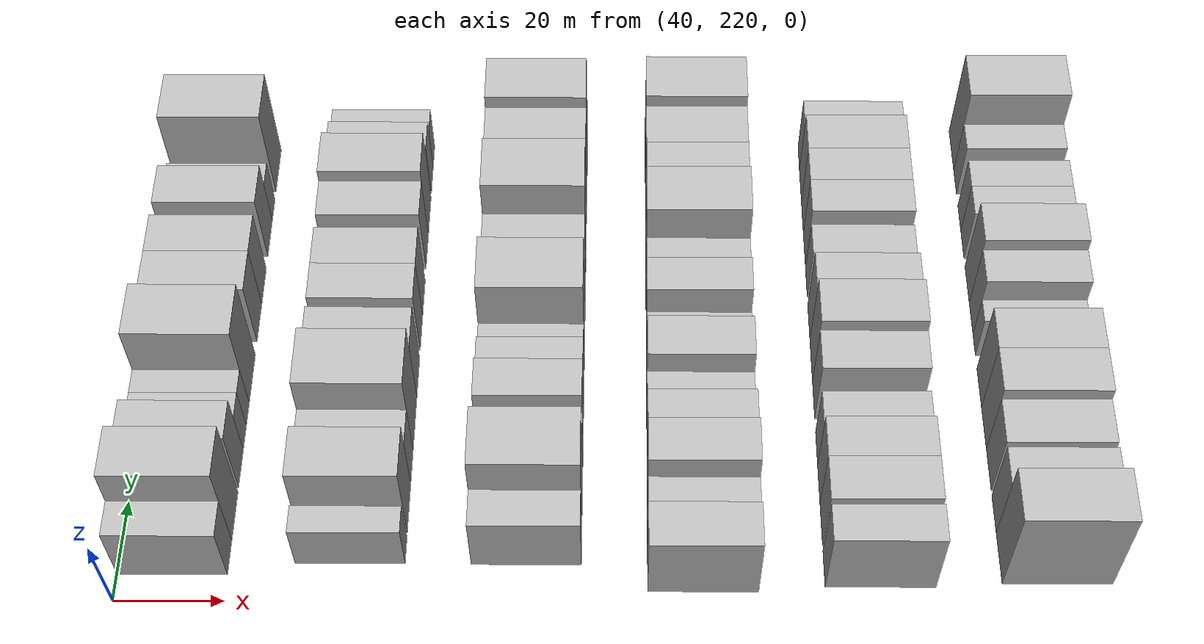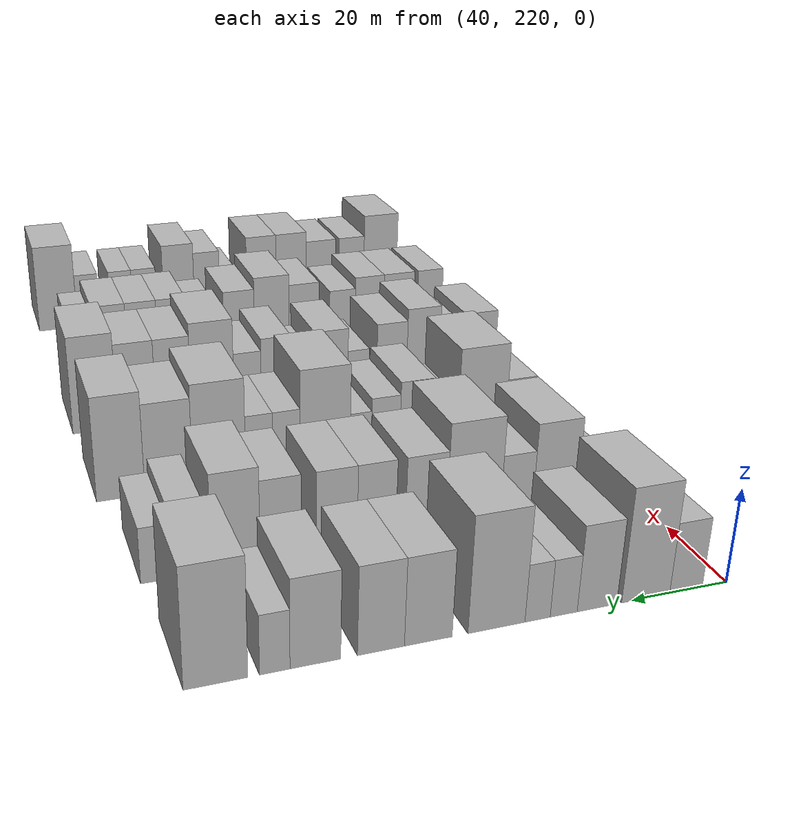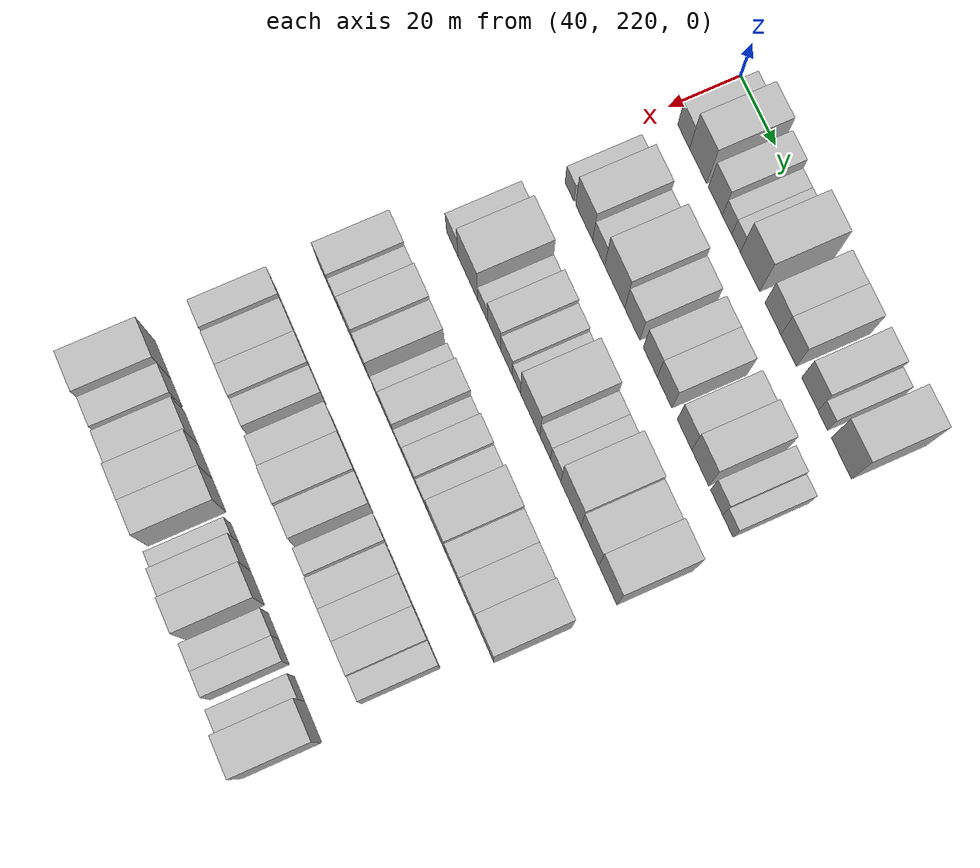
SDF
<sdf version="1.6">
 <world name="default">
  <model name="building_89">
   <static>1</static>
   <pose>50.0000 228.6966 0 0.000000 0.000000 0.000000</pose>
   <link name="link">
    <pose>0 0 7.50 0 0 0</pose>
    <collision name="collision"><geometry><box><size>20.0000 6.9171 15.0000</size></box></geometry></collision>
    <visual name="visual">
     <cast_shadows>0</cast_shadows>
     <geometry><box><size>20.0000 6.9171 15.0000</size></box></geometry>
     <material>
      <script>
       <uri>model://HANNAS_wall/materials/scripts</uri>
       <uri>model://HANNAS_wall/materials/textures</uri>
       <name>vrc/HANNAS_wall</name>
      </script>
     </material>
    </visual>
   </link>
  </model>
  <model name="building_90">
   <static>1</static>
   <pose>50.0000 237.1487 0 0.000000 0.000000 0.000000</pose>
   <link name="link">
    <pose>0 0 12.00 0 0 0</pose>
    <collision name="collision"><geometry><box><size>20.0000 9.9870 24.0000</size></box></geometry></collision>
    <visual name="visual">
     <cast_shadows>0</cast_shadows>
     <geometry><box><size>20.0000 9.9870 24.0000</size></box></geometry>
     <material>
      <script>
       <uri>model://HANNAS_wall/materials/scripts</uri>
       <uri>model://HANNAS_wall/materials/textures</uri>
       <name>vrc/HANNAS_wall</name>
      </script>
     </material>
    </visual>
   </link>
  </model>
  <model name="building_91">
   <static>1</static>
   <pose>50.0000 247.1616 0 0.000000 0.000000 0.000000</pose>
   <link name="link">
    <pose>0 0 9.00 0 0 0</pose>
    <collision name="collision"><geometry><box><size>20.0000 8.0387 18.0000</size></box></geometry></collision>
    <visual name="visual">
     <cast_shadows>0</cast_shadows>
     <geometry><box><size>20.0000 8.0387 18.0000</size></box></geometry>
     <material>
      <script>
       <uri>model://HANNAS_wall/materials/scripts</uri>
       <uri>model://HANNAS_wall/materials/textures</uri>
       <name>vrc/HANNAS_wall</name>
      </script>
     </material>
    </visual>
   </link>
  </model>
  <model name="building_92">
   <static>1</static>
   <pose>50.0000 253.8727 0 0.000000 0.000000 0.000000</pose>
   <link name="link">
    <pose>0 0 6.00 0 0 0</pose>
    <collision name="collision"><geometry><box><size>20.0000 5.3836 12.0000</size></box></geometry></collision>
    <visual name="visual">
     <cast_shadows>0</cast_shadows>
     <geometry><box><size>20.0000 5.3836 12.0000</size></box></geometry>
     <material>
      <script>
       <uri>model://HANNAS_wall/materials/scripts</uri>
       <uri>model://HANNAS_wall/materials/textures</uri>
       <name>vrc/HANNAS_wall</name>
      </script>
     </material>
    </visual>
   </link>
  </model>
  <model name="building_93">
   <static>1</static>
   <pose>50.0000 259.0503 0 0.000000 0.000000 0.000000</pose>
   <link name="link">
    <pose>0 0 6.00 0 0 0</pose>
    <collision name="collision"><geometry><box><size>20.0000 4.9715 12.0000</size></box></geometry></collision>
    <visual name="visual">
     <cast_shadows>0</cast_shadows>
     <geometry><box><size>20.0000 4.9715 12.0000</size></box></geometry>
     <material>
      <script>
       <uri>model://HANNAS_wall/materials/scripts</uri>
       <uri>model://HANNAS_wall/materials/textures</uri>
       <name>vrc/HANNAS_wall</name>
      </script>
     </material>
    </visual>
   </link>
  </model>
  <model name="building_94">
   <static>1</static>
   <pose>50.0000 267.0421 0 0.000000 0.000000 0.000000</pose>
   <link name="link">
    <pose>0 0 12.00 0 0 0</pose>
    <collision name="collision"><geometry><box><size>20.0000 11.0121 24.0000</size></box></geometry></collision>
    <visual name="visual">
     <cast_shadows>0</cast_shadows>
     <geometry><box><size>20.0000 11.0121 24.0000</size></box></geometry>
     <material>
      <script>
       <uri>model://HANNAS_wall/materials/scripts</uri>
       <uri>model://HANNAS_wall/materials/textures</uri>
       <name>vrc/HANNAS_wall</name>
      </script>
     </material>
    </visual>
   </link>
  </model>
  <model name="building_95">
   <static>1</static>
   <pose>50.0000 280.0065 0 0.000000 0.000000 0.000000</pose>
   <link name="link">
    <pose>0 0 9.00 0 0 0</pose>
    <collision name="collision"><geometry><box><size>20.0000 8.9168 18.0000</size></box></geometry></collision>
    <visual name="visual">
     <cast_shadows>0</cast_shadows>
     <geometry><box><size>20.0000 8.9168 18.0000</size></box></geometry>
     <material>
      <script>
       <uri>model://HANNAS_wall/materials/scripts</uri>
       <uri>model://HANNAS_wall/materials/textures</uri>
       <name>vrc/HANNAS_wall</name>
      </script>
     </material>
    </visual>
   </link>
  </model>
  <model name="building_96">
   <static>1</static>
   <pose>50.0000 288.7651 0 0.000000 0.000000 0.000000</pose>
   <link name="link">
    <pose>0 0 9.00 0 0 0</pose>
    <collision name="collision"><geometry><box><size>20.0000 8.6003 18.0000</size></box></geometry></collision>
    <visual name="visual">
     <cast_shadows>0</cast_shadows>
     <geometry><box><size>20.0000 8.6003 18.0000</size></box></geometry>
     <material>
      <script>
       <uri>model://HANNAS_wall/materials/scripts</uri>
       <uri>model://HANNAS_wall/materials/textures</uri>
       <name>vrc/HANNAS_wall</name>
      </script>
     </material>
    </visual>
   </link>
  </model>
  <model name="building_97">
   <static>1</static>
   <pose>50.0000 300.5587 0 0.000000 0.000000 0.000000</pose>
   <link name="link">
    <pose>0 0 9.00 0 0 0</pose>
    <collision name="collision"><geometry><box><size>20.0000 8.9869 18.0000</size></box></geometry></collision>
    <visual name="visual">
     <cast_shadows>0</cast_shadows>
     <geometry><box><size>20.0000 8.9869 18.0000</size></box></geometry>
     <material>
      <script>
       <uri>model://HANNAS_wall/materials/scripts</uri>
       <uri>model://HANNAS_wall/materials/textures</uri>
       <name>vrc/HANNAS_wall</name>
      </script>
     </material>
    </visual>
   </link>
  </model>
  <model name="building_98">
   <static>1</static>
   <pose>50.0000 307.7086 0 0.000000 0.000000 0.000000</pose>
   <link name="link">
    <pose>0 0 6.00 0 0 0</pose>
    <collision name="collision"><geometry><box><size>20.0000 5.3129 12.0000</size></box></geometry></collision>
    <visual name="visual">
     <cast_shadows>0</cast_shadows>
     <geometry><box><size>20.0000 5.3129 12.0000</size></box></geometry>
     <material>
      <script>
       <uri>model://HANNAS_wall/materials/scripts</uri>
       <uri>model://HANNAS_wall/materials/textures</uri>
       <name>vrc/HANNAS_wall</name>
      </script>
     </material>
    </visual>
   </link>
  </model>
  <model name="building_99">
   <static>1</static>
   <pose>50.0000 317.8639 0 0.000000 0.000000 0.000000</pose>
   <link name="link">
    <pose>0 0 12.00 0 0 0</pose>
    <collision name="collision"><geometry><box><size>20.0000 10.9977 24.0000</size></box></geometry></collision>
    <visual name="visual">
     <cast_shadows>0</cast_shadows>
     <geometry><box><size>20.0000 10.9977 24.0000</size></box></geometry>
     <material>
      <script>
       <uri>model://HANNAS_wall/materials/scripts</uri>
       <uri>model://HANNAS_wall/materials/textures</uri>
       <name>vrc/HANNAS_wall</name>
      </script>
     </material>
    </visual>
   </link>
  </model>
  <model name="building_206">
   <static>1</static>
   <pose>82.0000 230.2795 0 0.000000 0.000000 0.000000</pose>
   <link name="link">
    <pose>0 0 6.00 0 0 0</pose>
    <collision name="collision"><geometry><box><size>20.0000 5.3409 12.0000</size></box></geometry></collision>
    <visual name="visual">
     <cast_shadows>0</cast_shadows>
     <geometry><box><size>20.0000 5.3409 12.0000</size></box></geometry>
     <material>
      <script>
       <uri>model://HANNAS_wall/materials/scripts</uri>
       <uri>model://HANNAS_wall/materials/textures</uri>
       <name>vrc/HANNAS_wall</name>
      </script>
     </material>
    </visual>
   </link>
  </model>
  <model name="building_207">
   <static>1</static>
   <pose>82.0000 238.9626 0 0.000000 0.000000 0.000000</pose>
   <link name="link">
    <pose>0 0 10.50 0 0 0</pose>
    <collision name="collision"><geometry><box><size>20.0000 10.0252 21.0000</size></box></geometry></collision>
    <visual name="visual">
     <cast_shadows>0</cast_shadows>
     <geometry><box><size>20.0000 10.0252 21.0000</size></box></geometry>
     <material>
      <script>
       <uri>model://HANNAS_wall/materials/scripts</uri>
       <uri>model://HANNAS_wall/materials/textures</uri>
       <name>vrc/HANNAS_wall</name>
      </script>
     </material>
    </visual>
   </link>
  </model>
  <model name="building_208">
   <static>1</static>
   <pose>82.0000 247.5662 0 0.000000 0.000000 0.000000</pose>
   <link name="link">
    <pose>0 0 7.50 0 0 0</pose>
    <collision name="collision"><geometry><box><size>20.0000 7.1820 15.0000</size></box></geometry></collision>
    <visual name="visual">
     <cast_shadows>0</cast_shadows>
     <geometry><box><size>20.0000 7.1820 15.0000</size></box></geometry>
     <material>
      <script>
       <uri>model://HANNAS_wall/materials/scripts</uri>
       <uri>model://HANNAS_wall/materials/textures</uri>
       <name>vrc/HANNAS_wall</name>
      </script>
     </material>
    </visual>
   </link>
  </model>
  <model name="building_209">
   <static>1</static>
   <pose>82.0000 257.0385 0 0.000000 0.000000 0.000000</pose>
   <link name="link">
    <pose>0 0 12.00 0 0 0</pose>
    <collision name="collision"><geometry><box><size>20.0000 11.7626 24.0000</size></box></geometry></collision>
    <visual name="visual">
     <cast_shadows>0</cast_shadows>
     <geometry><box><size>20.0000 11.7626 24.0000</size></box></geometry>
     <material>
      <script>
       <uri>model://HANNAS_wall/materials/scripts</uri>
       <uri>model://HANNAS_wall/materials/textures</uri>
       <name>vrc/HANNAS_wall</name>
      </script>
     </material>
    </visual>
   </link>
  </model>
  <model name="building_210">
   <static>1</static>
   <pose>82.0000 267.3133 0 0.000000 0.000000 0.000000</pose>
   <link name="link">
    <pose>0 0 9.00 0 0 0</pose>
    <collision name="collision"><geometry><box><size>20.0000 8.7870 18.0000</size></box></geometry></collision>
    <visual name="visual">
     <cast_shadows>0</cast_shadows>
     <geometry><box><size>20.0000 8.7870 18.0000</size></box></geometry>
     <material>
      <script>
       <uri>model://HANNAS_wall/materials/scripts</uri>
       <uri>model://HANNAS_wall/materials/textures</uri>
       <name>vrc/HANNAS_wall</name>
      </script>
     </material>
    </visual>
   </link>
  </model>
  <model name="building_211">
   <static>1</static>
   <pose>82.0000 277.7340 0 0.000000 0.000000 0.000000</pose>
   <link name="link">
    <pose>0 0 9.00 0 0 0</pose>
    <collision name="collision"><geometry><box><size>20.0000 8.0545 18.0000</size></box></geometry></collision>
    <visual name="visual">
     <cast_shadows>0</cast_shadows>
     <geometry><box><size>20.0000 8.0545 18.0000</size></box></geometry>
     <material>
      <script>
       <uri>model://HANNAS_wall/materials/scripts</uri>
       <uri>model://HANNAS_wall/materials/textures</uri>
       <name>vrc/HANNAS_wall</name>
      </script>
     </material>
    </visual>
   </link>
  </model>
  <model name="building_212">
   <static>1</static>
   <pose>82.0000 285.9640 0 0.000000 0.000000 0.000000</pose>
   <link name="link">
    <pose>0 0 9.00 0 0 0</pose>
    <collision name="collision"><geometry><box><size>20.0000 8.4054 18.0000</size></box></geometry></collision>
    <visual name="visual">
     <cast_shadows>0</cast_shadows>
     <geometry><box><size>20.0000 8.4054 18.0000</size></box></geometry>
     <material>
      <script>
       <uri>model://HANNAS_wall/materials/scripts</uri>
       <uri>model://HANNAS_wall/materials/textures</uri>
       <name>vrc/HANNAS_wall</name>
      </script>
     </material>
    </visual>
   </link>
  </model>
  <model name="building_213">
   <static>1</static>
   <pose>82.0000 297.2841 0 0.000000 0.000000 0.000000</pose>
   <link name="link">
    <pose>0 0 9.00 0 0 0</pose>
    <collision name="collision"><geometry><box><size>20.0000 8.2349 18.0000</size></box></geometry></collision>
    <visual name="visual">
     <cast_shadows>0</cast_shadows>
     <geometry><box><size>20.0000 8.2349 18.0000</size></box></geometry>
     <material>
      <script>
       <uri>model://HANNAS_wall/materials/scripts</uri>
       <uri>model://HANNAS_wall/materials/textures</uri>
       <name>vrc/HANNAS_wall</name>
      </script>
     </material>
    </visual>
   </link>
  </model>
  <model name="building_214">
   <static>1</static>
   <pose>82.0000 306.1922 0 0.000000 0.000000 0.000000</pose>
   <link name="link">
    <pose>0 0 10.50 0 0 0</pose>
    <collision name="collision"><geometry><box><size>20.0000 9.5814 21.0000</size></box></geometry></collision>
    <visual name="visual">
     <cast_shadows>0</cast_shadows>
     <geometry><box><size>20.0000 9.5814 21.0000</size></box></geometry>
     <material>
      <script>
       <uri>model://HANNAS_wall/materials/scripts</uri>
       <uri>model://HANNAS_wall/materials/textures</uri>
       <name>vrc/HANNAS_wall</name>
      </script>
     </material>
    </visual>
   </link>
  </model>
  <model name="building_215">
   <static>1</static>
   <pose>82.0000 315.3817 0 0.000000 0.000000 0.000000</pose>
   <link name="link">
    <pose>0 0 7.50 0 0 0</pose>
    <collision name="collision"><geometry><box><size>20.0000 6.7977 15.0000</size></box></geometry></collision>
    <visual name="visual">
     <cast_shadows>0</cast_shadows>
     <geometry><box><size>20.0000 6.7977 15.0000</size></box></geometry>
     <material>
      <script>
       <uri>model://HANNAS_wall/materials/scripts</uri>
       <uri>model://HANNAS_wall/materials/textures</uri>
       <name>vrc/HANNAS_wall</name>
      </script>
     </material>
    </visual>
   </link>
  </model>
  <model name="building_216">
   <static>1</static>
   <pose>82.0000 321.6278 0 0.000000 0.000000 0.000000</pose>
   <link name="link">
    <pose>0 0 6.00 0 0 0</pose>
    <collision name="collision"><geometry><box><size>20.0000 5.6946 12.0000</size></box></geometry></collision>
    <visual name="visual">
     <cast_shadows>0</cast_shadows>
     <geometry><box><size>20.0000 5.6946 12.0000</size></box></geometry>
     <material>
      <script>
       <uri>model://HANNAS_wall/materials/scripts</uri>
       <uri>model://HANNAS_wall/materials/textures</uri>
       <name>vrc/HANNAS_wall</name>
      </script>
     </material>
    </visual>
   </link>
  </model>
  <model name="building_323">
   <static>1</static>
   <pose>114.0000 231.0573 0 0.000000 0.000000 0.000000</pose>
   <link name="link">
    <pose>0 0 7.50 0 0 0</pose>
    <collision name="collision"><geometry><box><size>20.0000 7.1978 15.0000</size></box></geometry></collision>
    <visual name="visual">
     <cast_shadows>0</cast_shadows>
     <geometry><box><size>20.0000 7.1978 15.0000</size></box></geometry>
     <material>
      <script>
       <uri>model://HANNAS_wall/materials/scripts</uri>
       <uri>model://HANNAS_wall/materials/textures</uri>
       <name>vrc/HANNAS_wall</name>
      </script>
     </material>
    </visual>
   </link>
  </model>
  <model name="building_324">
   <static>1</static>
   <pose>114.0000 240.5820 0 0.000000 0.000000 0.000000</pose>
   <link name="link">
    <pose>0 0 12.00 0 0 0</pose>
    <collision name="collision"><geometry><box><size>20.0000 11.8516 24.0000</size></box></geometry></collision>
    <visual name="visual">
     <cast_shadows>0</cast_shadows>
     <geometry><box><size>20.0000 11.8516 24.0000</size></box></geometry>
     <material>
      <script>
       <uri>model://HANNAS_wall/materials/scripts</uri>
       <uri>model://HANNAS_wall/materials/textures</uri>
       <name>vrc/HANNAS_wall</name>
      </script>
     </material>
    </visual>
   </link>
  </model>
  <model name="building_325">
   <static>1</static>
   <pose>114.0000 249.4685 0 0.000000 0.000000 0.000000</pose>
   <link name="link">
    <pose>0 0 6.00 0 0 0</pose>
    <collision name="collision"><geometry><box><size>20.0000 5.9212 12.0000</size></box></geometry></collision>
    <visual name="visual">
     <cast_shadows>0</cast_shadows>
     <geometry><box><size>20.0000 5.9212 12.0000</size></box></geometry>
     <material>
      <script>
       <uri>model://HANNAS_wall/materials/scripts</uri>
       <uri>model://HANNAS_wall/materials/textures</uri>
       <name>vrc/HANNAS_wall</name>
      </script>
     </material>
    </visual>
   </link>
  </model>
  <model name="building_326">
   <static>1</static>
   <pose>114.0000 256.4321 0 0.000000 0.000000 0.000000</pose>
   <link name="link">
    <pose>0 0 9.00 0 0 0</pose>
    <collision name="collision"><geometry><box><size>20.0000 8.0061 18.0000</size></box></geometry></collision>
    <visual name="visual">
     <cast_shadows>0</cast_shadows>
     <geometry><box><size>20.0000 8.0061 18.0000</size></box></geometry>
     <material>
      <script>
       <uri>model://HANNAS_wall/materials/scripts</uri>
       <uri>model://HANNAS_wall/materials/textures</uri>
       <name>vrc/HANNAS_wall</name>
      </script>
     </material>
    </visual>
   </link>
  </model>
  <model name="building_327">
   <static>1</static>
   <pose>114.0000 263.7961 0 0.000000 0.000000 0.000000</pose>
   <link name="link">
    <pose>0 0 7.50 0 0 0</pose>
    <collision name="collision"><geometry><box><size>20.0000 6.7218 15.0000</size></box></geometry></collision>
    <visual name="visual">
     <cast_shadows>0</cast_shadows>
     <geometry><box><size>20.0000 6.7218 15.0000</size></box></geometry>
     <material>
      <script>
       <uri>model://HANNAS_wall/materials/scripts</uri>
       <uri>model://HANNAS_wall/materials/textures</uri>
       <name>vrc/HANNAS_wall</name>
      </script>
     </material>
    </visual>
   </link>
  </model>
  <model name="building_328">
   <static>1</static>
   <pose>114.0000 269.6146 0 0.000000 0.000000 0.000000</pose>
   <link name="link">
    <pose>0 0 6.00 0 0 0</pose>
    <collision name="collision"><geometry><box><size>20.0000 4.9152 12.0000</size></box></geometry></collision>
    <visual name="visual">
     <cast_shadows>0</cast_shadows>
     <geometry><box><size>20.0000 4.9152 12.0000</size></box></geometry>
     <material>
      <script>
       <uri>model://HANNAS_wall/materials/scripts</uri>
       <uri>model://HANNAS_wall/materials/textures</uri>
       <name>vrc/HANNAS_wall</name>
      </script>
     </material>
    </visual>
   </link>
  </model>
  <model name="building_329">
   <static>1</static>
   <pose>114.0000 277.8018 0 0.000000 0.000000 0.000000</pose>
   <link name="link">
    <pose>0 0 12.00 0 0 0</pose>
    <collision name="collision"><geometry><box><size>20.0000 11.4593 24.0000</size></box></geometry></collision>
    <visual name="visual">
     <cast_shadows>0</cast_shadows>
     <geometry><box><size>20.0000 11.4593 24.0000</size></box></geometry>
     <material>
      <script>
       <uri>model://HANNAS_wall/materials/scripts</uri>
       <uri>model://HANNAS_wall/materials/textures</uri>
       <name>vrc/HANNAS_wall</name>
      </script>
     </material>
    </visual>
   </link>
  </model>
  <model name="building_330">
   <static>1</static>
   <pose>114.0000 286.6048 0 0.000000 0.000000 0.000000</pose>
   <link name="link">
    <pose>0 0 7.50 0 0 0</pose>
    <collision name="collision"><geometry><box><size>20.0000 6.1467 15.0000</size></box></geometry></collision>
    <visual name="visual">
     <cast_shadows>0</cast_shadows>
     <geometry><box><size>20.0000 6.1467 15.0000</size></box></geometry>
     <material>
      <script>
       <uri>model://HANNAS_wall/materials/scripts</uri>
       <uri>model://HANNAS_wall/materials/textures</uri>
       <name>vrc/HANNAS_wall</name>
      </script>
     </material>
    </visual>
   </link>
  </model>
  <model name="building_331">
   <static>1</static>
   <pose>114.0000 292.7090 0 0.000000 0.000000 0.000000</pose>
   <link name="link">
    <pose>0 0 7.50 0 0 0</pose>
    <collision name="collision"><geometry><box><size>20.0000 6.0618 15.0000</size></box></geometry></collision>
    <visual name="visual">
     <cast_shadows>0</cast_shadows>
     <geometry><box><size>20.0000 6.0618 15.0000</size></box></geometry>
     <material>
      <script>
       <uri>model://HANNAS_wall/materials/scripts</uri>
       <uri>model://HANNAS_wall/materials/textures</uri>
       <name>vrc/HANNAS_wall</name>
      </script>
     </material>
    </visual>
   </link>
  </model>
  <model name="building_332">
   <static>1</static>
   <pose>114.0000 301.5440 0 0.000000 0.000000 0.000000</pose>
   <link name="link">
    <pose>0 0 12.00 0 0 0</pose>
    <collision name="collision"><geometry><box><size>20.0000 11.6081 24.0000</size></box></geometry></collision>
    <visual name="visual">
     <cast_shadows>0</cast_shadows>
     <geometry><box><size>20.0000 11.6081 24.0000</size></box></geometry>
     <material>
      <script>
       <uri>model://HANNAS_wall/materials/scripts</uri>
       <uri>model://HANNAS_wall/materials/textures</uri>
       <name>vrc/HANNAS_wall</name>
      </script>
     </material>
    </visual>
   </link>
  </model>
  <model name="building_333">
   <static>1</static>
   <pose>114.0000 312.5005 0 0.000000 0.000000 0.000000</pose>
   <link name="link">
    <pose>0 0 10.50 0 0 0</pose>
    <collision name="collision"><geometry><box><size>20.0000 10.3049 21.0000</size></box></geometry></collision>
    <visual name="visual">
     <cast_shadows>0</cast_shadows>
     <geometry><box><size>20.0000 10.3049 21.0000</size></box></geometry>
     <material>
      <script>
       <uri>model://HANNAS_wall/materials/scripts</uri>
       <uri>model://HANNAS_wall/materials/textures</uri>
       <name>vrc/HANNAS_wall</name>
      </script>
     </material>
    </visual>
   </link>
  </model>
  <model name="building_334">
   <static>1</static>
   <pose>114.0000 322.7544 0 0.000000 0.000000 0.000000</pose>
   <link name="link">
    <pose>0 0 12.00 0 0 0</pose>
    <collision name="collision"><geometry><box><size>20.0000 10.2030 24.0000</size></box></geometry></collision>
    <visual name="visual">
     <cast_shadows>0</cast_shadows>
     <geometry><box><size>20.0000 10.2030 24.0000</size></box></geometry>
     <material>
      <script>
       <uri>model://HANNAS_wall/materials/scripts</uri>
       <uri>model://HANNAS_wall/materials/textures</uri>
       <name>vrc/HANNAS_wall</name>
      </script>
     </material>
    </visual>
   </link>
  </model>
  <model name="building_440">
   <static>1</static>
   <pose>146.0000 226.4975 0 0.000000 0.000000 0.000000</pose>
   <link name="link">
    <pose>0 0 9.00 0 0 0</pose>
    <collision name="collision"><geometry><box><size>20.0000 8.6639 18.0000</size></box></geometry></collision>
    <visual name="visual">
     <cast_shadows>0</cast_shadows>
     <geometry><box><size>20.0000 8.6639 18.0000</size></box></geometry>
     <material>
      <script>
       <uri>model://HANNAS_wall/materials/scripts</uri>
       <uri>model://HANNAS_wall/materials/textures</uri>
       <name>vrc/HANNAS_wall</name>
      </script>
     </material>
    </visual>
   </link>
  </model>
  <model name="building_441">
   <static>1</static>
   <pose>146.0000 234.1399 0 0.000000 0.000000 0.000000</pose>
   <link name="link">
    <pose>0 0 7.50 0 0 0</pose>
    <collision name="collision"><geometry><box><size>20.0000 6.6208 15.0000</size></box></geometry></collision>
    <visual name="visual">
     <cast_shadows>0</cast_shadows>
     <geometry><box><size>20.0000 6.6208 15.0000</size></box></geometry>
     <material>
      <script>
       <uri>model://HANNAS_wall/materials/scripts</uri>
       <uri>model://HANNAS_wall/materials/textures</uri>
       <name>vrc/HANNAS_wall</name>
      </script>
     </material>
    </visual>
   </link>
  </model>
  <model name="building_442">
   <static>1</static>
   <pose>146.0000 241.8039 0 0.000000 0.000000 0.000000</pose>
   <link name="link">
    <pose>0 0 10.50 0 0 0</pose>
    <collision name="collision"><geometry><box><size>20.0000 8.7071 21.0000</size></box></geometry></collision>
    <visual name="visual">
     <cast_shadows>0</cast_shadows>
     <geometry><box><size>20.0000 8.7071 21.0000</size></box></geometry>
     <material>
      <script>
       <uri>model://HANNAS_wall/materials/scripts</uri>
       <uri>model://HANNAS_wall/materials/textures</uri>
       <name>vrc/HANNAS_wall</name>
      </script>
     </material>
    </visual>
   </link>
  </model>
  <model name="building_443">
   <static>1</static>
   <pose>146.0000 250.0930 0 0.000000 0.000000 0.000000</pose>
   <link name="link">
    <pose>0 0 9.00 0 0 0</pose>
    <collision name="collision"><geometry><box><size>20.0000 7.8712 18.0000</size></box></geometry></collision>
    <visual name="visual">
     <cast_shadows>0</cast_shadows>
     <geometry><box><size>20.0000 7.8712 18.0000</size></box></geometry>
     <material>
      <script>
       <uri>model://HANNAS_wall/materials/scripts</uri>
       <uri>model://HANNAS_wall/materials/textures</uri>
       <name>vrc/HANNAS_wall</name>
      </script>
     </material>
    </visual>
   </link>
  </model>
  <model name="building_444">
   <static>1</static>
   <pose>146.0000 258.7563 0 0.000000 0.000000 0.000000</pose>
   <link name="link">
    <pose>0 0 6.00 0 0 0</pose>
    <collision name="collision"><geometry><box><size>20.0000 5.4554 12.0000</size></box></geometry></collision>
    <visual name="visual">
     <cast_shadows>0</cast_shadows>
     <geometry><box><size>20.0000 5.4554 12.0000</size></box></geometry>
     <material>
      <script>
       <uri>model://HANNAS_wall/materials/scripts</uri>
       <uri>model://HANNAS_wall/materials/textures</uri>
       <name>vrc/HANNAS_wall</name>
      </script>
     </material>
    </visual>
   </link>
  </model>
  <model name="building_445">
   <static>1</static>
   <pose>146.0000 265.7312 0 0.000000 0.000000 0.000000</pose>
   <link name="link">
    <pose>0 0 9.00 0 0 0</pose>
    <collision name="collision"><geometry><box><size>20.0000 8.4944 18.0000</size></box></geometry></collision>
    <visual name="visual">
     <cast_shadows>0</cast_shadows>
     <geometry><box><size>20.0000 8.4944 18.0000</size></box></geometry>
     <material>
      <script>
       <uri>model://HANNAS_wall/materials/scripts</uri>
       <uri>model://HANNAS_wall/materials/textures</uri>
       <name>vrc/HANNAS_wall</name>
      </script>
     </material>
    </visual>
   </link>
  </model>
  <model name="building_446">
   <static>1</static>
   <pose>146.0000 272.4188 0 0.000000 0.000000 0.000000</pose>
   <link name="link">
    <pose>0 0 6.00 0 0 0</pose>
    <collision name="collision"><geometry><box><size>20.0000 4.8807 12.0000</size></box></geometry></collision>
    <visual name="visual">
     <cast_shadows>0</cast_shadows>
     <geometry><box><size>20.0000 4.8807 12.0000</size></box></geometry>
     <material>
      <script>
       <uri>model://HANNAS_wall/materials/scripts</uri>
       <uri>model://HANNAS_wall/materials/textures</uri>
       <name>vrc/HANNAS_wall</name>
      </script>
     </material>
    </visual>
   </link>
  </model>
  <model name="building_447">
   <static>1</static>
   <pose>146.0000 279.6097 0 0.000000 0.000000 0.000000</pose>
   <link name="link">
    <pose>0 0 9.00 0 0 0</pose>
    <collision name="collision"><geometry><box><size>20.0000 7.5011 18.0000</size></box></geometry></collision>
    <visual name="visual">
     <cast_shadows>0</cast_shadows>
     <geometry><box><size>20.0000 7.5011 18.0000</size></box></geometry>
     <material>
      <script>
       <uri>model://HANNAS_wall/materials/scripts</uri>
       <uri>model://HANNAS_wall/materials/textures</uri>
       <name>vrc/HANNAS_wall</name>
      </script>
     </material>
    </visual>
   </link>
  </model>
  <model name="building_448">
   <static>1</static>
   <pose>146.0000 286.7342 0 0.000000 0.000000 0.000000</pose>
   <link name="link">
    <pose>0 0 7.50 0 0 0</pose>
    <collision name="collision"><geometry><box><size>20.0000 6.7477 15.0000</size></box></geometry></collision>
    <visual name="visual">
     <cast_shadows>0</cast_shadows>
     <geometry><box><size>20.0000 6.7477 15.0000</size></box></geometry>
     <material>
      <script>
       <uri>model://HANNAS_wall/materials/scripts</uri>
       <uri>model://HANNAS_wall/materials/textures</uri>
       <name>vrc/HANNAS_wall</name>
      </script>
     </material>
    </visual>
   </link>
  </model>
  <model name="building_449">
   <static>1</static>
   <pose>146.0000 295.3156 0 0.000000 0.000000 0.000000</pose>
   <link name="link">
    <pose>0 0 12.00 0 0 0</pose>
    <collision name="collision"><geometry><box><size>20.0000 10.4152 24.0000</size></box></geometry></collision>
    <visual name="visual">
     <cast_shadows>0</cast_shadows>
     <geometry><box><size>20.0000 10.4152 24.0000</size></box></geometry>
     <material>
      <script>
       <uri>model://HANNAS_wall/materials/scripts</uri>
       <uri>model://HANNAS_wall/materials/textures</uri>
       <name>vrc/HANNAS_wall</name>
      </script>
     </material>
    </visual>
   </link>
  </model>
  <model name="building_450">
   <static>1</static>
   <pose>146.0000 304.7418 0 0.000000 0.000000 0.000000</pose>
   <link name="link">
    <pose>0 0 10.50 0 0 0</pose>
    <collision name="collision"><geometry><box><size>20.0000 8.4373 21.0000</size></box></geometry></collision>
    <visual name="visual">
     <cast_shadows>0</cast_shadows>
     <geometry><box><size>20.0000 8.4373 21.0000</size></box></geometry>
     <material>
      <script>
       <uri>model://HANNAS_wall/materials/scripts</uri>
       <uri>model://HANNAS_wall/materials/textures</uri>
       <name>vrc/HANNAS_wall</name>
      </script>
     </material>
    </visual>
   </link>
  </model>
  <model name="building_451">
   <static>1</static>
   <pose>146.0000 313.5296 0 0.000000 0.000000 0.000000</pose>
   <link name="link">
    <pose>0 0 10.50 0 0 0</pose>
    <collision name="collision"><geometry><box><size>20.0000 9.1382 21.0000</size></box></geometry></collision>
    <visual name="visual">
     <cast_shadows>0</cast_shadows>
     <geometry><box><size>20.0000 9.1382 21.0000</size></box></geometry>
     <material>
      <script>
       <uri>model://HANNAS_wall/materials/scripts</uri>
       <uri>model://HANNAS_wall/materials/textures</uri>
       <name>vrc/HANNAS_wall</name>
      </script>
     </material>
    </visual>
   </link>
  </model>
  <model name="building_452">
   <static>1</static>
   <pose>146.0000 323.2677 0 0.000000 0.000000 0.000000</pose>
   <link name="link">
    <pose>0 0 12.00 0 0 0</pose>
    <collision name="collision"><geometry><box><size>20.0000 10.3382 24.0000</size></box></geometry></collision>
    <visual name="visual">
     <cast_shadows>0</cast_shadows>
     <geometry><box><size>20.0000 10.3382 24.0000</size></box></geometry>
     <material>
      <script>
       <uri>model://HANNAS_wall/materials/scripts</uri>
       <uri>model://HANNAS_wall/materials/textures</uri>
       <name>vrc/HANNAS_wall</name>
      </script>
     </material>
    </visual>
   </link>
  </model>
  <model name="building_554">
   <static>1</static>
   <pose>178.0000 226.8116 0 0.000000 0.000000 0.000000</pose>
   <link name="link">
    <pose>0 0 9.00 0 0 0</pose>
    <collision name="collision"><geometry><box><size>20.0000 7.2355 18.0000</size></box></geometry></collision>
    <visual name="visual">
     <cast_shadows>0</cast_shadows>
     <geometry><box><size>20.0000 7.2355 18.0000</size></box></geometry>
     <material>
      <script>
       <uri>model://HANNAS_wall/materials/scripts</uri>
       <uri>model://HANNAS_wall/materials/textures</uri>
       <name>vrc/HANNAS_wall</name>
      </script>
     </material>
    </visual>
   </link>
  </model>
  <model name="building_555">
   <static>1</static>
   <pose>178.0000 235.7997 0 0.000000 0.000000 0.000000</pose>
   <link name="link">
    <pose>0 0 9.00 0 0 0</pose>
    <collision name="collision"><geometry><box><size>20.0000 8.7408 18.0000</size></box></geometry></collision>
    <visual name="visual">
     <cast_shadows>0</cast_shadows>
     <geometry><box><size>20.0000 8.7408 18.0000</size></box></geometry>
     <material>
      <script>
       <uri>model://HANNAS_wall/materials/scripts</uri>
       <uri>model://HANNAS_wall/materials/textures</uri>
       <name>vrc/HANNAS_wall</name>
      </script>
     </material>
    </visual>
   </link>
  </model>
  <model name="building_556">
   <static>1</static>
   <pose>178.0000 244.2536 0 0.000000 0.000000 0.000000</pose>
   <link name="link">
    <pose>0 0 9.00 0 0 0</pose>
    <collision name="collision"><geometry><box><size>20.0000 8.1670 18.0000</size></box></geometry></collision>
    <visual name="visual">
     <cast_shadows>0</cast_shadows>
     <geometry><box><size>20.0000 8.1670 18.0000</size></box></geometry>
     <material>
      <script>
       <uri>model://HANNAS_wall/materials/scripts</uri>
       <uri>model://HANNAS_wall/materials/textures</uri>
       <name>vrc/HANNAS_wall</name>
      </script>
     </material>
    </visual>
   </link>
  </model>
  <model name="building_557">
   <static>1</static>
   <pose>178.0000 251.9338 0 0.000000 0.000000 0.000000</pose>
   <link name="link">
    <pose>0 0 7.50 0 0 0</pose>
    <collision name="collision"><geometry><box><size>20.0000 7.1933 15.0000</size></box></geometry></collision>
    <visual name="visual">
     <cast_shadows>0</cast_shadows>
     <geometry><box><size>20.0000 7.1933 15.0000</size></box></geometry>
     <material>
      <script>
       <uri>model://HANNAS_wall/materials/scripts</uri>
       <uri>model://HANNAS_wall/materials/textures</uri>
       <name>vrc/HANNAS_wall</name>
      </script>
     </material>
    </visual>
   </link>
  </model>
  <model name="building_558">
   <static>1</static>
   <pose>178.0000 262.6748 0 0.000000 0.000000 0.000000</pose>
   <link name="link">
    <pose>0 0 9.00 0 0 0</pose>
    <collision name="collision"><geometry><box><size>20.0000 8.2888 18.0000</size></box></geometry></collision>
    <visual name="visual">
     <cast_shadows>0</cast_shadows>
     <geometry><box><size>20.0000 8.2888 18.0000</size></box></geometry>
     <material>
      <script>
       <uri>model://HANNAS_wall/materials/scripts</uri>
       <uri>model://HANNAS_wall/materials/textures</uri>
       <name>vrc/HANNAS_wall</name>
      </script>
     </material>
    </visual>
   </link>
  </model>
  <model name="building_559">
   <static>1</static>
   <pose>178.0000 271.5889 0 0.000000 0.000000 0.000000</pose>
   <link name="link">
    <pose>0 0 10.50 0 0 0</pose>
    <collision name="collision"><geometry><box><size>20.0000 9.5394 21.0000</size></box></geometry></collision>
    <visual name="visual">
     <cast_shadows>0</cast_shadows>
     <geometry><box><size>20.0000 9.5394 21.0000</size></box></geometry>
     <material>
      <script>
       <uri>model://HANNAS_wall/materials/scripts</uri>
       <uri>model://HANNAS_wall/materials/textures</uri>
       <name>vrc/HANNAS_wall</name>
      </script>
     </material>
    </visual>
   </link>
  </model>
  <model name="building_560">
   <static>1</static>
   <pose>178.0000 280.4708 0 0.000000 0.000000 0.000000</pose>
   <link name="link">
    <pose>0 0 9.00 0 0 0</pose>
    <collision name="collision"><geometry><box><size>20.0000 8.2245 18.0000</size></box></geometry></collision>
    <visual name="visual">
     <cast_shadows>0</cast_shadows>
     <geometry><box><size>20.0000 8.2245 18.0000</size></box></geometry>
     <material>
      <script>
       <uri>model://HANNAS_wall/materials/scripts</uri>
       <uri>model://HANNAS_wall/materials/textures</uri>
       <name>vrc/HANNAS_wall</name>
      </script>
     </material>
    </visual>
   </link>
  </model>
  <model name="building_561">
   <static>1</static>
   <pose>178.0000 290.0047 0 0.000000 0.000000 0.000000</pose>
   <link name="link">
    <pose>0 0 7.50 0 0 0</pose>
    <collision name="collision"><geometry><box><size>20.0000 6.8434 15.0000</size></box></geometry></collision>
    <visual name="visual">
     <cast_shadows>0</cast_shadows>
     <geometry><box><size>20.0000 6.8434 15.0000</size></box></geometry>
     <material>
      <script>
       <uri>model://HANNAS_wall/materials/scripts</uri>
       <uri>model://HANNAS_wall/materials/textures</uri>
       <name>vrc/HANNAS_wall</name>
      </script>
     </material>
    </visual>
   </link>
  </model>
  <model name="building_562">
   <static>1</static>
   <pose>178.0000 298.2742 0 0.000000 0.000000 0.000000</pose>
   <link name="link">
    <pose>0 0 9.00 0 0 0</pose>
    <collision name="collision"><geometry><box><size>20.0000 7.6955 18.0000</size></box></geometry></collision>
    <visual name="visual">
     <cast_shadows>0</cast_shadows>
     <geometry><box><size>20.0000 7.6955 18.0000</size></box></geometry>
     <material>
      <script>
       <uri>model://HANNAS_wall/materials/scripts</uri>
       <uri>model://HANNAS_wall/materials/textures</uri>
       <name>vrc/HANNAS_wall</name>
      </script>
     </material>
    </visual>
   </link>
  </model>
  <model name="building_563">
   <static>1</static>
   <pose>178.0000 306.0972 0 0.000000 0.000000 0.000000</pose>
   <link name="link">
    <pose>0 0 9.00 0 0 0</pose>
    <collision name="collision"><geometry><box><size>20.0000 7.9505 18.0000</size></box></geometry></collision>
    <visual name="visual">
     <cast_shadows>0</cast_shadows>
     <geometry><box><size>20.0000 7.9505 18.0000</size></box></geometry>
     <material>
      <script>
       <uri>model://HANNAS_wall/materials/scripts</uri>
       <uri>model://HANNAS_wall/materials/textures</uri>
       <name>vrc/HANNAS_wall</name>
      </script>
     </material>
    </visual>
   </link>
  </model>
  <model name="building_564">
   <static>1</static>
   <pose>178.0000 314.2563 0 0.000000 0.000000 0.000000</pose>
   <link name="link">
    <pose>0 0 9.00 0 0 0</pose>
    <collision name="collision"><geometry><box><size>20.0000 8.3678 18.0000</size></box></geometry></collision>
    <visual name="visual">
     <cast_shadows>0</cast_shadows>
     <geometry><box><size>20.0000 8.3678 18.0000</size></box></geometry>
     <material>
      <script>
       <uri>model://HANNAS_wall/materials/scripts</uri>
       <uri>model://HANNAS_wall/materials/textures</uri>
       <name>vrc/HANNAS_wall</name>
      </script>
     </material>
    </visual>
   </link>
  </model>
  <model name="building_565">
   <static>1</static>
   <pose>178.0000 321.4927 0 0.000000 0.000000 0.000000</pose>
   <link name="link">
    <pose>0 0 7.50 0 0 0</pose>
    <collision name="collision"><geometry><box><size>20.0000 6.1050 15.0000</size></box></geometry></collision>
    <visual name="visual">
     <cast_shadows>0</cast_shadows>
     <geometry><box><size>20.0000 6.1050 15.0000</size></box></geometry>
     <material>
      <script>
       <uri>model://HANNAS_wall/materials/scripts</uri>
       <uri>model://HANNAS_wall/materials/textures</uri>
       <name>vrc/HANNAS_wall</name>
      </script>
     </material>
    </visual>
   </link>
  </model>
  <model name="building_677">
   <static>1</static>
   <pose>210.0000 229.1691 0 0.000000 0.000000 0.000000</pose>
   <link name="link">
    <pose>0 0 12.00 0 0 0</pose>
    <collision name="collision"><geometry><box><size>20.0000 10.3494 24.0000</size></box></geometry></collision>
    <visual name="visual">
     <cast_shadows>0</cast_shadows>
     <geometry><box><size>20.0000 10.3494 24.0000</size></box></geometry>
     <material>
      <script>
       <uri>model://HANNAS_wall/materials/scripts</uri>
       <uri>model://HANNAS_wall/materials/textures</uri>
       <name>vrc/HANNAS_wall</name>
      </script>
     </material>
    </visual>
   </link>
  </model>
  <model name="building_678">
   <static>1</static>
   <pose>210.0000 238.1894 0 0.000000 0.000000 0.000000</pose>
   <link name="link">
    <pose>0 0 9.00 0 0 0</pose>
    <collision name="collision"><geometry><box><size>20.0000 7.6910 18.0000</size></box></geometry></collision>
    <visual name="visual">
     <cast_shadows>0</cast_shadows>
     <geometry><box><size>20.0000 7.6910 18.0000</size></box></geometry>
     <material>
      <script>
       <uri>model://HANNAS_wall/materials/scripts</uri>
       <uri>model://HANNAS_wall/materials/textures</uri>
       <name>vrc/HANNAS_wall</name>
      </script>
     </material>
    </visual>
   </link>
  </model>
  <model name="building_679">
   <static>1</static>
   <pose>210.0000 247.5276 0 0.000000 0.000000 0.000000</pose>
   <link name="link">
    <pose>0 0 9.00 0 0 0</pose>
    <collision name="collision"><geometry><box><size>20.0000 8.9855 18.0000</size></box></geometry></collision>
    <visual name="visual">
     <cast_shadows>0</cast_shadows>
     <geometry><box><size>20.0000 8.9855 18.0000</size></box></geometry>
     <material>
      <script>
       <uri>model://HANNAS_wall/materials/scripts</uri>
       <uri>model://HANNAS_wall/materials/textures</uri>
       <name>vrc/HANNAS_wall</name>
      </script>
     </material>
    </visual>
   </link>
  </model>
  <model name="building_680">
   <static>1</static>
   <pose>210.0000 256.6047 0 0.000000 0.000000 0.000000</pose>
   <link name="link">
    <pose>0 0 10.50 0 0 0</pose>
    <collision name="collision"><geometry><box><size>20.0000 9.1685 21.0000</size></box></geometry></collision>
    <visual name="visual">
     <cast_shadows>0</cast_shadows>
     <geometry><box><size>20.0000 9.1685 21.0000</size></box></geometry>
     <material>
      <script>
       <uri>model://HANNAS_wall/materials/scripts</uri>
       <uri>model://HANNAS_wall/materials/textures</uri>
       <name>vrc/HANNAS_wall</name>
      </script>
     </material>
    </visual>
   </link>
  </model>
  <model name="building_681">
   <static>1</static>
   <pose>210.0000 265.5658 0 0.000000 0.000000 0.000000</pose>
   <link name="link">
    <pose>0 0 10.50 0 0 0</pose>
    <collision name="collision"><geometry><box><size>20.0000 8.7538 21.0000</size></box></geometry></collision>
    <visual name="visual">
     <cast_shadows>0</cast_shadows>
     <geometry><box><size>20.0000 8.7538 21.0000</size></box></geometry>
     <material>
      <script>
       <uri>model://HANNAS_wall/materials/scripts</uri>
       <uri>model://HANNAS_wall/materials/textures</uri>
       <name>vrc/HANNAS_wall</name>
      </script>
     </material>
    </visual>
   </link>
  </model>
  <model name="building_682">
   <static>1</static>
   <pose>210.0000 275.4153 0 0.000000 0.000000 0.000000</pose>
   <link name="link">
    <pose>0 0 6.00 0 0 0</pose>
    <collision name="collision"><geometry><box><size>20.0000 4.9453 12.0000</size></box></geometry></collision>
    <visual name="visual">
     <cast_shadows>0</cast_shadows>
     <geometry><box><size>20.0000 4.9453 12.0000</size></box></geometry>
     <material>
      <script>
       <uri>model://HANNAS_wall/materials/scripts</uri>
       <uri>model://HANNAS_wall/materials/textures</uri>
       <name>vrc/HANNAS_wall</name>
      </script>
     </material>
    </visual>
   </link>
  </model>
  <model name="building_683">
   <static>1</static>
   <pose>210.0000 281.6053 0 0.000000 0.000000 0.000000</pose>
   <link name="link">
    <pose>0 0 9.00 0 0 0</pose>
    <collision name="collision"><geometry><box><size>20.0000 7.4347 18.0000</size></box></geometry></collision>
    <visual name="visual">
     <cast_shadows>0</cast_shadows>
     <geometry><box><size>20.0000 7.4347 18.0000</size></box></geometry>
     <material>
      <script>
       <uri>model://HANNAS_wall/materials/scripts</uri>
       <uri>model://HANNAS_wall/materials/textures</uri>
       <name>vrc/HANNAS_wall</name>
      </script>
     </material>
    </visual>
   </link>
  </model>
  <model name="building_684">
   <static>1</static>
   <pose>210.0000 289.7400 0 0.000000 0.000000 0.000000</pose>
   <link name="link">
    <pose>0 0 10.50 0 0 0</pose>
    <collision name="collision"><geometry><box><size>20.0000 8.8346 21.0000</size></box></geometry></collision>
    <visual name="visual">
     <cast_shadows>0</cast_shadows>
     <geometry><box><size>20.0000 8.8346 21.0000</size></box></geometry>
     <material>
      <script>
       <uri>model://HANNAS_wall/materials/scripts</uri>
       <uri>model://HANNAS_wall/materials/textures</uri>
       <name>vrc/HANNAS_wall</name>
      </script>
     </material>
    </visual>
   </link>
  </model>
  <model name="building_685">
   <static>1</static>
   <pose>210.0000 299.5731 0 0.000000 0.000000 0.000000</pose>
   <link name="link">
    <pose>0 0 7.50 0 0 0</pose>
    <collision name="collision"><geometry><box><size>20.0000 6.8318 15.0000</size></box></geometry></collision>
    <visual name="visual">
     <cast_shadows>0</cast_shadows>
     <geometry><box><size>20.0000 6.8318 15.0000</size></box></geometry>
     <material>
      <script>
       <uri>model://HANNAS_wall/materials/scripts</uri>
       <uri>model://HANNAS_wall/materials/textures</uri>
       <name>vrc/HANNAS_wall</name>
      </script>
     </material>
    </visual>
   </link>
  </model>
  <model name="building_686">
   <static>1</static>
   <pose>210.0000 306.1672 0 0.000000 0.000000 0.000000</pose>
   <link name="link">
    <pose>0 0 7.50 0 0 0</pose>
    <collision name="collision"><geometry><box><size>20.0000 6.3563 15.0000</size></box></geometry></collision>
    <visual name="visual">
     <cast_shadows>0</cast_shadows>
     <geometry><box><size>20.0000 6.3563 15.0000</size></box></geometry>
     <material>
      <script>
       <uri>model://HANNAS_wall/materials/scripts</uri>
       <uri>model://HANNAS_wall/materials/textures</uri>
       <name>vrc/HANNAS_wall</name>
      </script>
     </material>
    </visual>
   </link>
  </model>
  <model name="building_687">
   <static>1</static>
   <pose>210.0000 315.4852 0 0.000000 0.000000 0.000000</pose>
   <link name="link">
    <pose>0 0 7.50 0 0 0</pose>
    <collision name="collision"><geometry><box><size>20.0000 6.2798 15.0000</size></box></geometry></collision>
    <visual name="visual">
     <cast_shadows>0</cast_shadows>
     <geometry><box><size>20.0000 6.2798 15.0000</size></box></geometry>
     <material>
      <script>
       <uri>model://HANNAS_wall/materials/scripts</uri>
       <uri>model://HANNAS_wall/materials/textures</uri>
       <name>vrc/HANNAS_wall</name>
      </script>
     </material>
    </visual>
   </link>
  </model>
  <model name="building_688">
   <static>1</static>
   <pose>210.0000 323.8314 0 0.000000 0.000000 0.000000</pose>
   <link name="link">
    <pose>0 0 12.00 0 0 0</pose>
    <collision name="collision"><geometry><box><size>20.0000 10.4125 24.0000</size></box></geometry></collision>
    <visual name="visual">
     <cast_shadows>0</cast_shadows>
     <geometry><box><size>20.0000 10.4125 24.0000</size></box></geometry>
     <material>
      <script>
       <uri>model://HANNAS_wall/materials/scripts</uri>
       <uri>model://HANNAS_wall/materials/textures</uri>
       <name>vrc/HANNAS_wall</name>
      </script>
     </material>
    </visual>
   </link>
  </model>
 </world>
</sdf>
